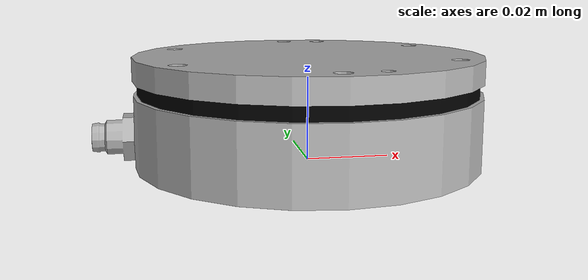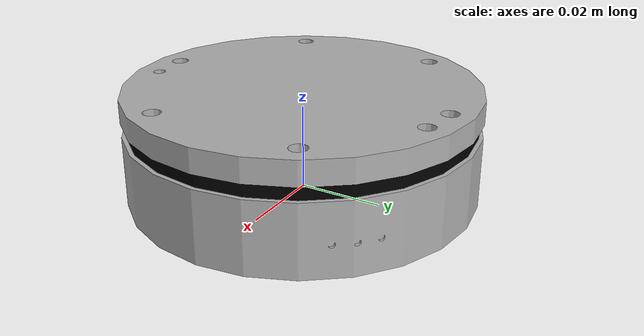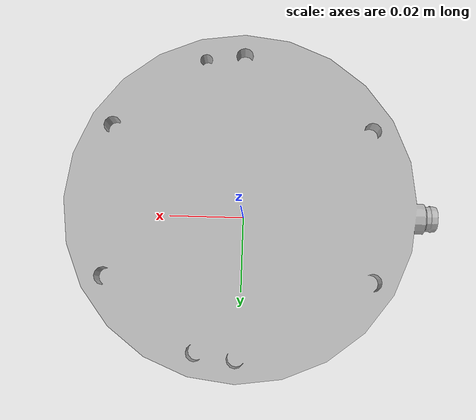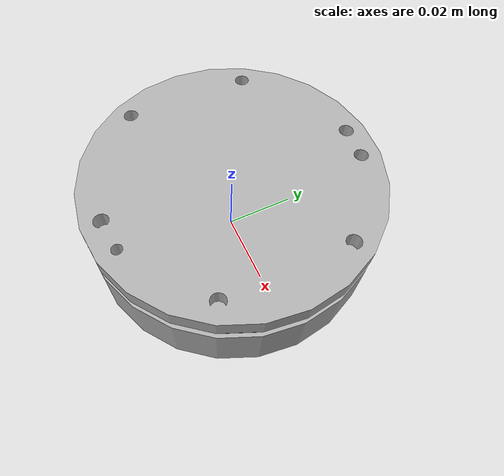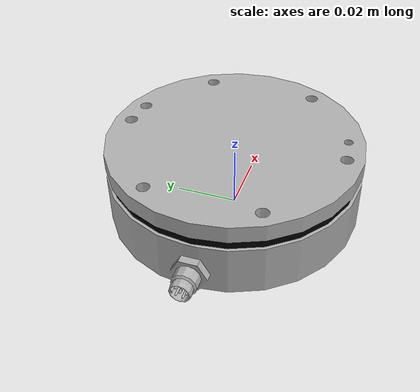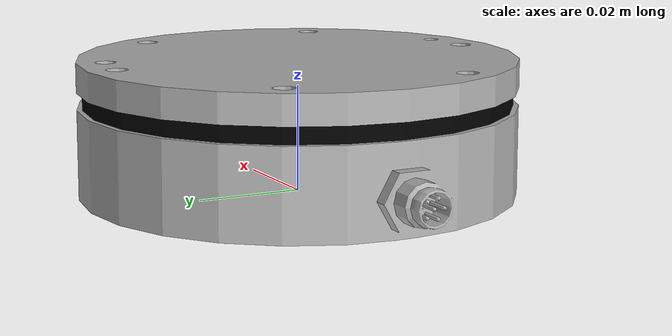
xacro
<?xml version="1.0"?>
<robot xmlns:xacro="http://wiki.ros.org/xacro" name="robotiq_gripper">
    <!-- parameters -->
    <xacro:arg name="ip_address" default="192.168.1.1" />
    <xacro:arg name="rdt_sampling_rate" default="500" />

    <!-- Import macros -->
    <xacro:include filename="$(find net_ft_description)/urdf/ati_axia80_ft_sensor_macro.urdf.xacro" />

    <link name="world" />
    <xacro:ati_axia80_ft_sensor
      parent="world"
      prefix=""
      ip_address="$(arg ip_address)"
      rdt_sampling_rate="$(arg rdt_sampling_rate)">
        <origin xyz="0 0 0" rpy="0 0 0" />
    </xacro:ati_axia80_ft_sensor>
</robot>

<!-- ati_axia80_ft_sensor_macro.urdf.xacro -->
<robot xmlns:xacro="http://ros.org/wiki/xacro">
  <xacro:macro name="ati_axia80_ft_sensor" params="
    prefix
    parent
    *origin
    ip_address
    rdt_sampling_rate">

    <joint name="${prefix}fts_joint" type="fixed">
      <!-- The parent link must be read from the robot model it is attached to. -->
      <parent link="${parent}"/>
      <child link="${prefix}fts_link"/>
      <xacro:insert_block name="origin" />
    </joint>

    <link name="${prefix}fts_link">
        <visual>
          <origin xyz="0 0 0" rpy="0 0 0" />
          <geometry>
            <mesh filename="package://net_ft_description/meshes/visual/ati_axia80_ft_sensor.dae"/>
          </geometry>
        </visual>
        <collision>
          <origin xyz="0 0 0" rpy="0 0 0"/>
          <geometry>
            <mesh filename="package://net_ft_description/meshes/collision/ati_axia80_ft_sensor.stl"/>
          </geometry>
        </collision>
        <inertial>
          <mass value="0.28" />
          <origin xyz="0 0 0" />
          <inertia ixx="0.000132" ixy="0.0" ixz="0.0" iyy="0.000132" iyz="0.0" izz="0.000235" />
        </inertial>
    </link>

    <joint name="${prefix}tool_side_joint" type="fixed">
      <parent link="${prefix}fts_link"/>
      <child link="${prefix}tool_mount_link"/>
      <origin xyz="0 0 0.0254" rpy="0 0 0"/>
    </joint>
    <link name="${prefix}tool_mount_link"/>

    <xacro:include filename="$(find net_ft_description)/urdf/net_ft_sensor.ros2_control.xacro" />
    <xacro:net_ft_sensor_ros2_control
      name="NetFTHardwareInterface"
      sensor_type="ati_axia"
      ip_address="${ip_address}"
      rdt_sampling_rate="${rdt_sampling_rate}"/>
  </xacro:macro>
</robot>
